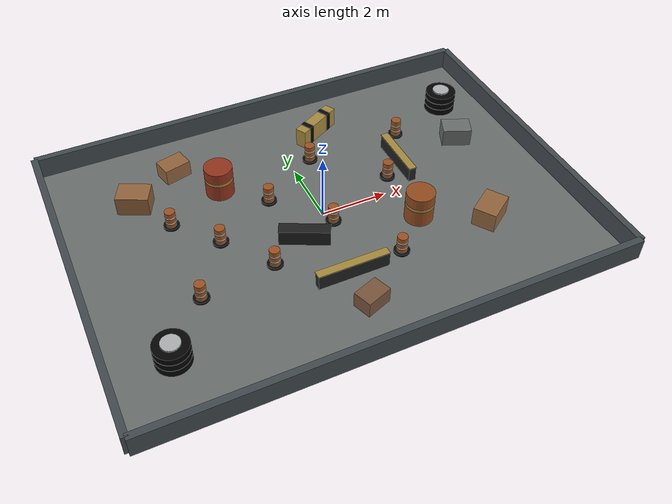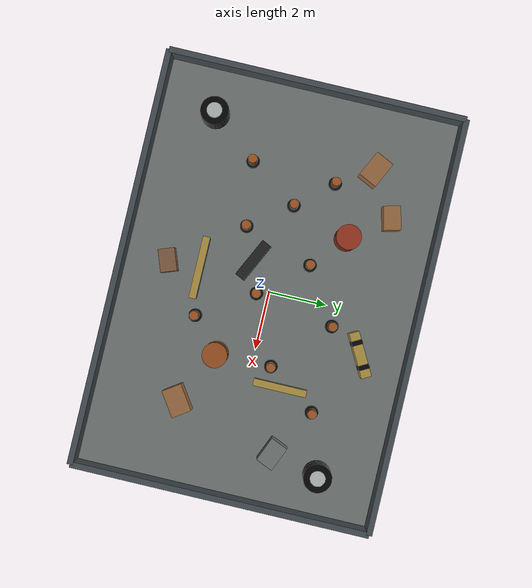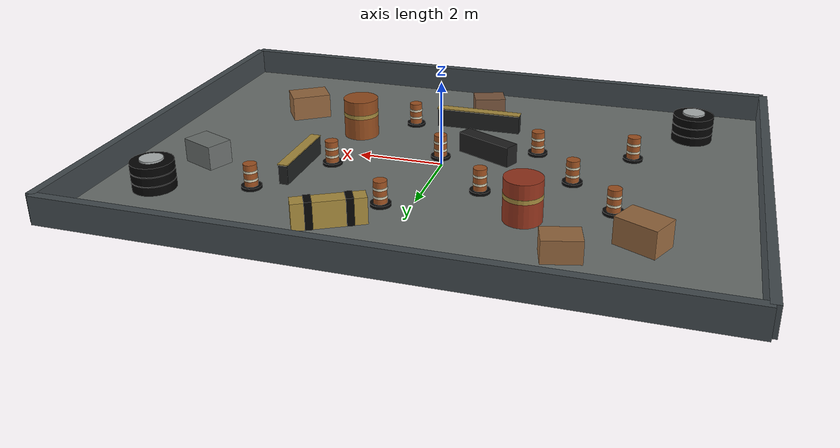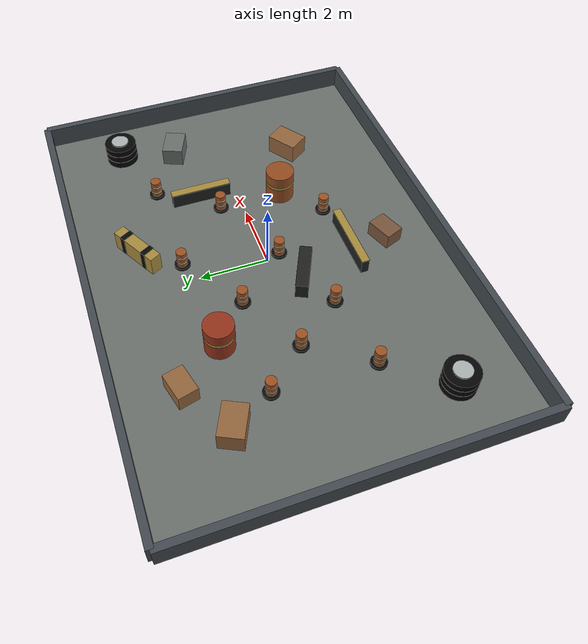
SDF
<sdf version="1.9">
 <world name="me5413_obstacle_world">
  <plugin filename="gz-sim-physics-system" name="gz::sim::systems::Physics"/>
  <plugin filename="gz-sim-scene-broadcaster-system" name="gz::sim::systems::SceneBroadcaster"/>
  <plugin filename="gz-sim-user-commands-system" name="gz::sim::systems::UserCommands"/>
  <plugin filename="gz-sim-sensors-system" name="gz::sim::systems::Sensors">
   <render_engine>ogre2</render_engine>
  </plugin>
  <gravity>0 0 -9.8</gravity>
  <magnetic_field>6e-06 2.3e-05 -4.2e-05</magnetic_field>
  <atmosphere type="adiabatic"/>
  <physics name="default_physics" type="ignored">
   <max_step_size>0.001</max_step_size>
   <real_time_factor>1.0</real_time_factor>
   <real_time_update_rate>1000</real_time_update_rate>
  </physics>
  <scene>
   <ambient>0.52 0.52 0.50 1</ambient>
   <background>0.78 0.84 0.9 1</background>
   <shadows>true</shadows>
  </scene>
  <light name="sun" type="directional">
   <pose>0 0 10 0 0 0</pose>
   <diffuse>1.0 0.94 0.82 1</diffuse>
   <specular>0.25 0.25 0.22 1</specular>
   <attenuation>
    <range>1000</range>
    <constant>0.9</constant>
    <linear>0.01</linear>
    <quadratic>0.001</quadratic>
   </attenuation>
   <direction>-0.45 0.25 -0.86</direction>
  </light>
  <model name="arena_floor">
   <static>true</static>
   <pose>0 0 -0.03 0 0 0</pose>
   <link name="link">
    <collision name="collision"><geometry><box><size>14 10 0.06</size></box></geometry></collision>
    <visual name="visual">
     <geometry><box><size>14 10 0.06</size></box></geometry>
     <material>
      <ambient>0.34 0.36 0.35 1</ambient>
      <diffuse>0.42 0.44 0.43 1</diffuse>
      <specular>0.05 0.05 0.05 1</specular>
     </material>
    </visual>
   </link>
  </model>
  <model name="arena_wall_north">
   <static>true</static>
   <pose>0 5.1 0.325 0 0 0</pose>
   <link name="link">
    <collision name="collision"><geometry><box><size>14.2 0.2 0.65</size></box></geometry></collision>
    <visual name="visual">
     <geometry><box><size>14.2 0.2 0.65</size></box></geometry>
     <material><ambient>0.18 0.2 0.22 1</ambient><diffuse>0.26 0.29 0.31 1</diffuse></material>
    </visual>
   </link>
  </model>
  <model name="arena_wall_south">
   <static>true</static>
   <pose>0 -5.1 0.325 0 0 0</pose>
   <link name="link">
    <collision name="collision"><geometry><box><size>14.2 0.2 0.65</size></box></geometry></collision>
    <visual name="visual">
     <geometry><box><size>14.2 0.2 0.65</size></box></geometry>
     <material><ambient>0.18 0.2 0.22 1</ambient><diffuse>0.26 0.29 0.31 1</diffuse></material>
    </visual>
   </link>
  </model>
  <model name="arena_wall_east">
   <static>true</static>
   <pose>7.1 0 0.325 0 0 0</pose>
   <link name="link">
    <collision name="collision"><geometry><box><size>0.2 10.2 0.65</size></box></geometry></collision>
    <visual name="visual">
     <geometry><box><size>0.2 10.2 0.65</size></box></geometry>
     <material><ambient>0.18 0.2 0.22 1</ambient><diffuse>0.26 0.29 0.31 1</diffuse></material>
    </visual>
   </link>
  </model>
  <model name="arena_wall_west">
   <static>true</static>
   <pose>-7.1 0 0.325 0 0 0</pose>
   <link name="link">
    <collision name="collision"><geometry><box><size>0.2 10.2 0.65</size></box></geometry></collision>
    <visual name="visual">
     <geometry><box><size>0.2 10.2 0.65</size></box></geometry>
     <material><ambient>0.18 0.2 0.22 1</ambient><diffuse>0.26 0.29 0.31 1</diffuse></material>
    </visual>
   </link>
  </model>
  <model name="low_barrier_mid">
   <static>true</static>
   <pose>-0.25 -2.45 0.225 0 0 0.0</pose>
   <link name="link">
    <collision name="collision"><geometry><box><size>2.1 0.22 0.45</size></box></geometry></collision>
    <visual name="visual">
     <geometry><box><size>2.1 0.22 0.45</size></box></geometry>
     <material><ambient>0.07 0.08 0.08 1</ambient><diffuse>0.12 0.13 0.13 1</diffuse></material>
    </visual>
    <visual name="warning_yellow_top">
     <pose>0 0 0.236 0 0 0</pose>
     <geometry><box><size>2.12 0.24 0.025</size></box></geometry>
     <material>
      <ambient>0.50 0.42 0.18 1</ambient>
      <diffuse>0.66 0.55 0.24 1</diffuse>
      <emissive>0.0 0.0 0.0 1</emissive>
     </material>
    </visual>
   </link>
  </model>
  <model name="low_barrier_exit">
   <static>true</static>
   <pose>3.05 1.1 0.225 0 0 1.5708</pose>
   <link name="link">
    <collision name="collision"><geometry><box><size>1.8 0.22 0.45</size></box></geometry></collision>
    <visual name="visual">
     <geometry><box><size>1.8 0.22 0.45</size></box></geometry>
     <material><ambient>0.07 0.08 0.08 1</ambient><diffuse>0.12 0.13 0.13 1</diffuse></material>
    </visual>
    <visual name="warning_yellow_top">
     <pose>0 0 0.236 0 0 0</pose>
     <geometry><box><size>1.82 0.24 0.025</size></box></geometry>
     <material>
      <ambient>0.50 0.42 0.18 1</ambient>
      <diffuse>0.66 0.55 0.24 1</diffuse>
      <emissive>0.0 0.0 0.0 1</emissive>
     </material>
    </visual>
   </link>
  </model>
  <model name="cone_start_left">
   <static>true</static>
   <pose>-4.2 -1.55 0 0 0 0</pose>
   <link name="link">
    <collision name="collision">
     <pose>0 0 0.29 0 0 0</pose>
     <geometry><cylinder><radius>0.16</radius><length>0.58</length></cylinder></geometry>
    </collision>
    <visual name="orange_body">
     <pose>0 0 0.29 0 0 0</pose>
     <geometry><cylinder><radius>0.15</radius><length>0.58</length></cylinder></geometry>
     <material>
      <ambient>0.48 0.24 0.10 1</ambient>
      <diffuse>0.62 0.32 0.13 1</diffuse>
      <specular>0.14 0.10 0.07 1</specular>
      <emissive>0.0 0.0 0.0 1</emissive>
     </material>
    </visual>
    <visual name="white_band_lower">
     <pose>0 0 0.22 0 0 0</pose>
     <geometry><cylinder><radius>0.156</radius><length>0.055</length></cylinder></geometry>
     <material><ambient>0.68 0.66 0.58 1</ambient><diffuse>0.82 0.80 0.70 1</diffuse></material>
    </visual>
    <visual name="white_band_upper">
     <pose>0 0 0.41 0 0 0</pose>
     <geometry><cylinder><radius>0.156</radius><length>0.055</length></cylinder></geometry>
     <material><ambient>0.68 0.66 0.58 1</ambient><diffuse>0.82 0.80 0.70 1</diffuse></material>
    </visual>
    <visual name="black_base">
     <pose>0 0 0.035 0 0 0</pose>
     <geometry><cylinder><radius>0.23</radius><length>0.07</length></cylinder></geometry>
     <material><ambient>0.02 0.02 0.02 1</ambient><diffuse>0.03 0.03 0.03 1</diffuse></material>
    </visual>
   </link>
  </model>
  <model name="cone_start_right">
   <static>true</static>
   <pose>-4.1 1.35 0 0 0 0</pose>
   <link name="link">
    <collision name="collision">
     <pose>0 0 0.29 0 0 0</pose>
     <geometry><cylinder><radius>0.16</radius><length>0.58</length></cylinder></geometry>
    </collision>
    <visual name="orange_body">
     <pose>0 0 0.29 0 0 0</pose>
     <geometry><cylinder><radius>0.15</radius><length>0.58</length></cylinder></geometry>
     <material>
      <ambient>0.48 0.24 0.10 1</ambient>
      <diffuse>0.62 0.32 0.13 1</diffuse>
      <specular>0.14 0.10 0.07 1</specular>
      <emissive>0.0 0.0 0.0 1</emissive>
     </material>
    </visual>
    <visual name="white_band_lower">
     <pose>0 0 0.22 0 0 0</pose>
     <geometry><cylinder><radius>0.156</radius><length>0.055</length></cylinder></geometry>
     <material><ambient>0.68 0.66 0.58 1</ambient><diffuse>0.82 0.80 0.70 1</diffuse></material>
    </visual>
    <visual name="white_band_upper">
     <pose>0 0 0.41 0 0 0</pose>
     <geometry><cylinder><radius>0.156</radius><length>0.055</length></cylinder></geometry>
     <material><ambient>0.68 0.66 0.58 1</ambient><diffuse>0.82 0.80 0.70 1</diffuse></material>
    </visual>
    <visual name="black_base">
     <pose>0 0 0.035 0 0 0</pose>
     <geometry><cylinder><radius>0.23</radius><length>0.07</length></cylinder></geometry>
     <material><ambient>0.02 0.02 0.02 1</ambient><diffuse>0.03 0.03 0.03 1</diffuse></material>
    </visual>
   </link>
  </model>
  <model name="cone_slalom_2">
   <static>true</static>
   <pose>-3.05 0.15 0 0 0 0</pose>
   <link name="link">
    <collision name="collision">
     <pose>0 0 0.29 0 0 0</pose>
     <geometry><cylinder><radius>0.16</radius><length>0.58</length></cylinder></geometry>
    </collision>
    <visual name="orange_body">
     <pose>0 0 0.29 0 0 0</pose>
     <geometry><cylinder><radius>0.15</radius><length>0.58</length></cylinder></geometry>
     <material>
      <ambient>0.48 0.24 0.10 1</ambient>
      <diffuse>0.62 0.32 0.13 1</diffuse>
      <specular>0.14 0.10 0.07 1</specular>
      <emissive>0.0 0.0 0.0 1</emissive>
     </material>
    </visual>
    <visual name="white_band_lower">
     <pose>0 0 0.22 0 0 0</pose>
     <geometry><cylinder><radius>0.156</radius><length>0.055</length></cylinder></geometry>
     <material><ambient>0.68 0.66 0.58 1</ambient><diffuse>0.82 0.80 0.70 1</diffuse></material>
    </visual>
    <visual name="white_band_upper">
     <pose>0 0 0.41 0 0 0</pose>
     <geometry><cylinder><radius>0.156</radius><length>0.055</length></cylinder></geometry>
     <material><ambient>0.68 0.66 0.58 1</ambient><diffuse>0.82 0.80 0.70 1</diffuse></material>
    </visual>
    <visual name="black_base">
     <pose>0 0 0.035 0 0 0</pose>
     <geometry><cylinder><radius>0.23</radius><length>0.07</length></cylinder></geometry>
     <material><ambient>0.02 0.02 0.02 1</ambient><diffuse>0.03 0.03 0.03 1</diffuse></material>
    </visual>
   </link>
  </model>
  <model name="cone_slalom_3">
   <static>true</static>
   <pose>-2.0 -1.25 0 0 0 0</pose>
   <link name="link">
    <collision name="collision">
     <pose>0 0 0.29 0 0 0</pose>
     <geometry><cylinder><radius>0.16</radius><length>0.58</length></cylinder></geometry>
    </collision>
    <visual name="orange_body">
     <pose>0 0 0.29 0 0 0</pose>
     <geometry><cylinder><radius>0.15</radius><length>0.58</length></cylinder></geometry>
     <material>
      <ambient>0.48 0.24 0.10 1</ambient>
      <diffuse>0.62 0.32 0.13 1</diffuse>
      <specular>0.14 0.10 0.07 1</specular>
      <emissive>0.0 0.0 0.0 1</emissive>
     </material>
    </visual>
    <visual name="white_band_lower">
     <pose>0 0 0.22 0 0 0</pose>
     <geometry><cylinder><radius>0.156</radius><length>0.055</length></cylinder></geometry>
     <material><ambient>0.68 0.66 0.58 1</ambient><diffuse>0.82 0.80 0.70 1</diffuse></material>
    </visual>
    <visual name="white_band_upper">
     <pose>0 0 0.41 0 0 0</pose>
     <geometry><cylinder><radius>0.156</radius><length>0.055</length></cylinder></geometry>
     <material><ambient>0.68 0.66 0.58 1</ambient><diffuse>0.82 0.80 0.70 1</diffuse></material>
    </visual>
    <visual name="black_base">
     <pose>0 0 0.035 0 0 0</pose>
     <geometry><cylinder><radius>0.23</radius><length>0.07</length></cylinder></geometry>
     <material><ambient>0.02 0.02 0.02 1</ambient><diffuse>0.03 0.03 0.03 1</diffuse></material>
    </visual>
   </link>
  </model>
  <model name="cone_slalom_4">
   <static>true</static>
   <pose>-1.2 1.15 0 0 0 0</pose>
   <link name="link">
    <collision name="collision">
     <pose>0 0 0.29 0 0 0</pose>
     <geometry><cylinder><radius>0.16</radius><length>0.58</length></cylinder></geometry>
    </collision>
    <visual name="orange_body">
     <pose>0 0 0.29 0 0 0</pose>
     <geometry><cylinder><radius>0.15</radius><length>0.58</length></cylinder></geometry>
     <material>
      <ambient>0.48 0.24 0.10 1</ambient>
      <diffuse>0.62 0.32 0.13 1</diffuse>
      <specular>0.14 0.10 0.07 1</specular>
      <emissive>0.0 0.0 0.0 1</emissive>
     </material>
    </visual>
    <visual name="white_band_lower">
     <pose>0 0 0.22 0 0 0</pose>
     <geometry><cylinder><radius>0.156</radius><length>0.055</length></cylinder></geometry>
     <material><ambient>0.68 0.66 0.58 1</ambient><diffuse>0.82 0.80 0.70 1</diffuse></material>
    </visual>
    <visual name="white_band_upper">
     <pose>0 0 0.41 0 0 0</pose>
     <geometry><cylinder><radius>0.156</radius><length>0.055</length></cylinder></geometry>
     <material><ambient>0.68 0.66 0.58 1</ambient><diffuse>0.82 0.80 0.70 1</diffuse></material>
    </visual>
    <visual name="black_base">
     <pose>0 0 0.035 0 0 0</pose>
     <geometry><cylinder><radius>0.23</radius><length>0.07</length></cylinder></geometry>
     <material><ambient>0.02 0.02 0.02 1</ambient><diffuse>0.03 0.03 0.03 1</diffuse></material>
    </visual>
   </link>
  </model>
  <model name="cone_slalom_5">
   <static>true</static>
   <pose>0.15 -0.4 0 0 0 0</pose>
   <link name="link">
    <collision name="collision">
     <pose>0 0 0.29 0 0 0</pose>
     <geometry><cylinder><radius>0.16</radius><length>0.58</length></cylinder></geometry>
    </collision>
    <visual name="orange_body">
     <pose>0 0 0.29 0 0 0</pose>
     <geometry><cylinder><radius>0.15</radius><length>0.58</length></cylinder></geometry>
     <material>
      <ambient>0.48 0.24 0.10 1</ambient>
      <diffuse>0.62 0.32 0.13 1</diffuse>
      <specular>0.14 0.10 0.07 1</specular>
      <emissive>0.0 0.0 0.0 1</emissive>
     </material>
    </visual>
    <visual name="white_band_lower">
     <pose>0 0 0.22 0 0 0</pose>
     <geometry><cylinder><radius>0.156</radius><length>0.055</length></cylinder></geometry>
     <material><ambient>0.68 0.66 0.58 1</ambient><diffuse>0.82 0.80 0.70 1</diffuse></material>
    </visual>
    <visual name="white_band_upper">
     <pose>0 0 0.41 0 0 0</pose>
     <geometry><cylinder><radius>0.156</radius><length>0.055</length></cylinder></geometry>
     <material><ambient>0.68 0.66 0.58 1</ambient><diffuse>0.82 0.80 0.70 1</diffuse></material>
    </visual>
    <visual name="black_base">
     <pose>0 0 0.035 0 0 0</pose>
     <geometry><cylinder><radius>0.23</radius><length>0.07</length></cylinder></geometry>
     <material><ambient>0.02 0.02 0.02 1</ambient><diffuse>0.03 0.03 0.03 1</diffuse></material>
    </visual>
   </link>
  </model>
  <model name="cone_left_mid">
   <static>true</static>
   <pose>0.65 2.35 0 0 0 0</pose>
   <link name="link">
    <collision name="collision">
     <pose>0 0 0.29 0 0 0</pose>
     <geometry><cylinder><radius>0.16</radius><length>0.58</length></cylinder></geometry>
    </collision>
    <visual name="orange_body">
     <pose>0 0 0.29 0 0 0</pose>
     <geometry><cylinder><radius>0.15</radius><length>0.58</length></cylinder></geometry>
     <material>
      <ambient>0.48 0.24 0.10 1</ambient>
      <diffuse>0.62 0.32 0.13 1</diffuse>
      <specular>0.14 0.10 0.07 1</specular>
      <emissive>0.0 0.0 0.0 1</emissive>
     </material>
    </visual>
    <visual name="white_band_lower">
     <pose>0 0 0.22 0 0 0</pose>
     <geometry><cylinder><radius>0.156</radius><length>0.055</length></cylinder></geometry>
     <material><ambient>0.68 0.66 0.58 1</ambient><diffuse>0.82 0.80 0.70 1</diffuse></material>
    </visual>
    <visual name="white_band_upper">
     <pose>0 0 0.41 0 0 0</pose>
     <geometry><cylinder><radius>0.156</radius><length>0.055</length></cylinder></geometry>
     <material><ambient>0.68 0.66 0.58 1</ambient><diffuse>0.82 0.80 0.70 1</diffuse></material>
    </visual>
    <visual name="black_base">
     <pose>0 0 0.035 0 0 0</pose>
     <geometry><cylinder><radius>0.23</radius><length>0.07</length></cylinder></geometry>
     <material><ambient>0.02 0.02 0.02 1</ambient><diffuse>0.03 0.03 0.03 1</diffuse></material>
    </visual>
   </link>
  </model>
  <model name="cone_right_mid">
   <static>true</static>
   <pose>1.35 -2.25 0 0 0 0</pose>
   <link name="link">
    <collision name="collision">
     <pose>0 0 0.29 0 0 0</pose>
     <geometry><cylinder><radius>0.16</radius><length>0.58</length></cylinder></geometry>
    </collision>
    <visual name="orange_body">
     <pose>0 0 0.29 0 0 0</pose>
     <geometry><cylinder><radius>0.15</radius><length>0.58</length></cylinder></geometry>
     <material>
      <ambient>0.48 0.24 0.10 1</ambient>
      <diffuse>0.62 0.32 0.13 1</diffuse>
      <specular>0.14 0.10 0.07 1</specular>
      <emissive>0.0 0.0 0.0 1</emissive>
     </material>
    </visual>
    <visual name="white_band_lower">
     <pose>0 0 0.22 0 0 0</pose>
     <geometry><cylinder><radius>0.156</radius><length>0.055</length></cylinder></geometry>
     <material><ambient>0.68 0.66 0.58 1</ambient><diffuse>0.82 0.80 0.70 1</diffuse></material>
    </visual>
    <visual name="white_band_upper">
     <pose>0 0 0.41 0 0 0</pose>
     <geometry><cylinder><radius>0.156</radius><length>0.055</length></cylinder></geometry>
     <material><ambient>0.68 0.66 0.58 1</ambient><diffuse>0.82 0.80 0.70 1</diffuse></material>
    </visual>
    <visual name="black_base">
     <pose>0 0 0.035 0 0 0</pose>
     <geometry><cylinder><radius>0.23</radius><length>0.07</length></cylinder></geometry>
     <material><ambient>0.02 0.02 0.02 1</ambient><diffuse>0.03 0.03 0.03 1</diffuse></material>
    </visual>
   </link>
  </model>
  <model name="cone_back_left">
   <static>true</static>
   <pose>3.65 2.35 0 0 0 0</pose>
   <link name="link">
    <collision name="collision">
     <pose>0 0 0.29 0 0 0</pose>
     <geometry><cylinder><radius>0.16</radius><length>0.58</length></cylinder></geometry>
    </collision>
    <visual name="orange_body">
     <pose>0 0 0.29 0 0 0</pose>
     <geometry><cylinder><radius>0.15</radius><length>0.58</length></cylinder></geometry>
     <material>
      <ambient>0.48 0.24 0.10 1</ambient>
      <diffuse>0.62 0.32 0.13 1</diffuse>
      <specular>0.14 0.10 0.07 1</specular>
      <emissive>0.0 0.0 0.0 1</emissive>
     </material>
    </visual>
    <visual name="white_band_lower">
     <pose>0 0 0.22 0 0 0</pose>
     <geometry><cylinder><radius>0.156</radius><length>0.055</length></cylinder></geometry>
     <material><ambient>0.68 0.66 0.58 1</ambient><diffuse>0.82 0.80 0.70 1</diffuse></material>
    </visual>
    <visual name="white_band_upper">
     <pose>0 0 0.41 0 0 0</pose>
     <geometry><cylinder><radius>0.156</radius><length>0.055</length></cylinder></geometry>
     <material><ambient>0.68 0.66 0.58 1</ambient><diffuse>0.82 0.80 0.70 1</diffuse></material>
    </visual>
    <visual name="black_base">
     <pose>0 0 0.035 0 0 0</pose>
     <geometry><cylinder><radius>0.23</radius><length>0.07</length></cylinder></geometry>
     <material><ambient>0.02 0.02 0.02 1</ambient><diffuse>0.03 0.03 0.03 1</diffuse></material>
    </visual>
   </link>
  </model>
  <model name="cone_extra_1">
   <static>true</static>
   <pose>2.45 0.65 0 0 0 0</pose>
   <link name="link">
    <collision name="collision">
     <pose>0 0 0.29 0 0 0</pose>
     <geometry><cylinder><radius>0.16</radius><length>0.58</length></cylinder></geometry>
    </collision>
    <visual name="orange_body">
     <pose>0 0 0.29 0 0 0</pose>
     <geometry><cylinder><radius>0.15</radius><length>0.58</length></cylinder></geometry>
     <material>
      <ambient>0.48 0.24 0.10 1</ambient>
      <diffuse>0.62 0.32 0.13 1</diffuse>
      <specular>0.14 0.10 0.07 1</specular>
      <emissive>0.0 0.0 0.0 1</emissive>
     </material>
    </visual>
    <visual name="white_band_lower">
     <pose>0 0 0.22 0 0 0</pose>
     <geometry><cylinder><radius>0.156</radius><length>0.055</length></cylinder></geometry>
     <material><ambient>0.68 0.66 0.58 1</ambient><diffuse>0.82 0.80 0.70 1</diffuse></material>
    </visual>
    <visual name="white_band_upper">
     <pose>0 0 0.41 0 0 0</pose>
     <geometry><cylinder><radius>0.156</radius><length>0.055</length></cylinder></geometry>
     <material><ambient>0.68 0.66 0.58 1</ambient><diffuse>0.82 0.80 0.70 1</diffuse></material>
    </visual>
    <visual name="black_base">
     <pose>0 0 0.035 0 0 0</pose>
     <geometry><cylinder><radius>0.23</radius><length>0.07</length></cylinder></geometry>
     <material><ambient>0.02 0.02 0.02 1</ambient><diffuse>0.03 0.03 0.03 1</diffuse></material>
    </visual>
   </link>
  </model>
  <model name="box_north">
   <static>true</static>
   <pose>-3.35 3.45 0.25 0 0 0.25</pose>
   <link name="link">
    <collision name="collision"><geometry><box><size>0.82 0.58 0.50</size></box></geometry></collision>
    <visual name="visual">
     <geometry><box><size>0.82 0.58 0.50</size></box></geometry>
     <material>
      <ambient>0.46 0.30 0.18 1</ambient>
      <diffuse>0.58 0.40 0.24 1</diffuse>
      <specular>0.10 0.07 0.04 1</specular>
      <emissive>0.0 0.0 0.0 1</emissive>
     </material>
    </visual>
   </link>
  </model>
  <model name="box_center">
   <static>true</static>
   <pose>5.25 1.35 0.28 0 0 -0.4</pose>
   <link name="link">
    <collision name="collision"><geometry><box><size>0.88 0.62 0.56</size></box></geometry></collision>
    <visual name="visual">
     <geometry><box><size>0.88 0.62 0.56</size></box></geometry>
     <material>
      <ambient>0.28 0.30 0.30 1</ambient>
      <diffuse>0.42 0.44 0.43 1</diffuse>
      <specular>0.10 0.10 0.09 1</specular>
      <emissive>0.0 0.0 0.0 1</emissive>
     </material>
    </visual>
   </link>
  </model>
  <model name="box_south">
   <static>true</static>
   <pose>-0.25 -3.55 0.24 0 0 0.35</pose>
   <link name="link">
    <collision name="collision"><geometry><box><size>0.78 0.56 0.48</size></box></geometry></collision>
    <visual name="visual">
     <geometry><box><size>0.78 0.56 0.48</size></box></geometry>
     <material>
      <ambient>0.34 0.24 0.18 1</ambient>
      <diffuse>0.48 0.34 0.24 1</diffuse>
      <specular>0.10 0.07 0.05 1</specular>
      <emissive>0.0 0.0 0.0 1</emissive>
     </material>
    </visual>
   </link>
  </model>
  <model name="box_west_north">
   <static>true</static>
   <pose>-4.8 2.55 0.30 0 0 -0.45</pose>
   <link name="link">
    <collision name="collision"><geometry><box><size>0.95 0.68 0.60</size></box></geometry></collision>
    <visual name="visual">
     <geometry><box><size>0.95 0.68 0.60</size></box></geometry>
     <material>
      <ambient>0.46 0.30 0.18 1</ambient>
      <diffuse>0.58 0.40 0.24 1</diffuse>
      <specular>0.10 0.07 0.04 1</specular>
      <emissive>0.0 0.0 0.0 1</emissive>
     </material>
    </visual>
   </link>
  </model>
  <model name="box_east_south">
   <static>true</static>
   <pose>4.25 -2.15 0.30 0 0 0.6</pose>
   <link name="link">
    <collision name="collision"><geometry><box><size>0.95 0.68 0.60</size></box></geometry></collision>
    <visual name="visual">
     <geometry><box><size>0.95 0.68 0.60</size></box></geometry>
     <material>
      <ambient>0.46 0.30 0.18 1</ambient>
      <diffuse>0.58 0.40 0.24 1</diffuse>
      <specular>0.10 0.07 0.04 1</specular>
      <emissive>0.0 0.0 0.0 1</emissive>
     </material>
    </visual>
   </link>
  </model>
  <model name="barrel_north_mid">
   <static>true</static>
   <pose>-2.35 2.15 0 0 0 0</pose>
   <link name="link">
    <collision name="collision">
     <pose>0 0 0.48 0 0 0</pose>
     <geometry><cylinder><radius>0.42</radius><length>0.96</length></cylinder></geometry>
    </collision>
    <visual name="body">
     <pose>0 0 0.48 0 0 0</pose>
     <geometry><cylinder><radius>0.42</radius><length>0.96</length></cylinder></geometry>
     <material>
      <ambient>0.44 0.14 0.08 1</ambient>
      <diffuse>0.58 0.20 0.11 1</diffuse>
      <specular>0.14 0.08 0.05 1</specular>
      <emissive>0.0 0.0 0.0 1</emissive>
     </material>
    </visual>
    <visual name="yellow_band">
     <pose>0 0 0.58 0 0 0</pose>
     <geometry><cylinder><radius>0.423</radius><length>0.10</length></cylinder></geometry>
     <material><ambient>0.48 0.40 0.18 1</ambient><diffuse>0.64 0.54 0.24 1</diffuse></material>
    </visual>
   </link>
  </model>
  <model name="barrel_south_mid">
   <static>true</static>
   <pose>2.45 -1.25 0 0 0 0</pose>
   <link name="link">
    <collision name="collision">
     <pose>0 0 0.48 0 0 0</pose>
     <geometry><cylinder><radius>0.42</radius><length>0.96</length></cylinder></geometry>
    </collision>
    <visual name="body">
     <pose>0 0 0.48 0 0 0</pose>
     <geometry><cylinder><radius>0.42</radius><length>0.96</length></cylinder></geometry>
     <material>
      <ambient>0.42 0.20 0.08 1</ambient>
      <diffuse>0.58 0.30 0.12 1</diffuse>
      <specular>0.14 0.09 0.05 1</specular>
      <emissive>0.0 0.0 0.0 1</emissive>
     </material>
    </visual>
    <visual name="yellow_band">
     <pose>0 0 0.58 0 0 0</pose>
     <geometry><cylinder><radius>0.423</radius><length>0.10</length></cylinder></geometry>
     <material><ambient>0.48 0.40 0.18 1</ambient><diffuse>0.64 0.54 0.24 1</diffuse></material>
    </visual>
   </link>
  </model>
  <model name="low_block_center_gap">
   <static>true</static>
   <pose>-0.9 -0.75 0.24 0 0 -0.45</pose>
   <link name="link">
    <collision name="collision"><geometry><box><size>1.45 0.36 0.48</size></box></geometry></collision>
    <visual name="visual">
     <geometry><box><size>1.45 0.36 0.48</size></box></geometry>
     <material>
      <ambient>0.08 0.08 0.08 1</ambient>
      <diffuse>0.12 0.12 0.12 1</diffuse>
      <specular>0.18 0.18 0.18 1</specular>
      <emissive>0.02 0.02 0.02 1</emissive>
     </material>
    </visual>
   </link>
  </model>
  <model name="tire_stack_west">
   <static>true</static>
   <pose>-5.45 -3.15 0 0 0 0.25</pose>
   <link name="link">
    <collision name="collision">
     <pose>0 0 0.36 0 0 0</pose>
     <geometry><cylinder><radius>0.48</radius><length>0.72</length></cylinder></geometry>
    </collision>
    <visual name="tire_bottom">
     <pose>0 0 0.14 0 0 0</pose>
     <geometry><cylinder><radius>0.48</radius><length>0.20</length></cylinder></geometry>
     <material>
      <ambient>0.005 0.005 0.005 1</ambient>
      <diffuse>0.015 0.015 0.015 1</diffuse>
      <specular>0.05 0.05 0.05 1</specular>
     </material>
    </visual>
    <visual name="tire_middle">
     <pose>0 0 0.36 0 0 0</pose>
     <geometry><cylinder><radius>0.48</radius><length>0.20</length></cylinder></geometry>
     <material>
      <ambient>0.005 0.005 0.005 1</ambient>
      <diffuse>0.015 0.015 0.015 1</diffuse>
      <specular>0.05 0.05 0.05 1</specular>
     </material>
    </visual>
    <visual name="tire_top">
     <pose>0 0 0.58 0 0 0</pose>
     <geometry><cylinder><radius>0.48</radius><length>0.20</length></cylinder></geometry>
     <material>
      <ambient>0.005 0.005 0.005 1</ambient>
      <diffuse>0.015 0.015 0.015 1</diffuse>
      <specular>0.05 0.05 0.05 1</specular>
     </material>
    </visual>
    <visual name="silver_cap">
     <pose>0 0 0.72 0 0 0</pose>
     <geometry><cylinder><radius>0.26</radius><length>0.04</length></cylinder></geometry>
     <material>
      <ambient>0.45 0.46 0.46 1</ambient>
      <diffuse>0.68 0.70 0.70 1</diffuse>
      <specular>0.30 0.30 0.30 1</specular>
     </material>
    </visual>
   </link>
  </model>
  <model name="tire_stack_east">
   <static>true</static>
   <pose>5.65 3.0 0 0 0 -0.45</pose>
   <link name="link">
    <collision name="collision">
     <pose>0 0 0.36 0 0 0</pose>
     <geometry><cylinder><radius>0.48</radius><length>0.72</length></cylinder></geometry>
    </collision>
    <visual name="tire_bottom">
     <pose>0 0 0.14 0 0 0</pose>
     <geometry><cylinder><radius>0.48</radius><length>0.20</length></cylinder></geometry>
     <material>
      <ambient>0.005 0.005 0.005 1</ambient>
      <diffuse>0.015 0.015 0.015 1</diffuse>
      <specular>0.05 0.05 0.05 1</specular>
     </material>
    </visual>
    <visual name="tire_middle">
     <pose>0 0 0.36 0 0 0</pose>
     <geometry><cylinder><radius>0.48</radius><length>0.20</length></cylinder></geometry>
     <material>
      <ambient>0.005 0.005 0.005 1</ambient>
      <diffuse>0.015 0.015 0.015 1</diffuse>
      <specular>0.05 0.05 0.05 1</specular>
     </material>
    </visual>
    <visual name="tire_top">
     <pose>0 0 0.58 0 0 0</pose>
     <geometry><cylinder><radius>0.48</radius><length>0.20</length></cylinder></geometry>
     <material>
      <ambient>0.005 0.005 0.005 1</ambient>
      <diffuse>0.015 0.015 0.015 1</diffuse>
      <specular>0.05 0.05 0.05 1</specular>
     </material>
    </visual>
    <visual name="silver_cap">
     <pose>0 0 0.72 0 0 0</pose>
     <geometry><cylinder><radius>0.26</radius><length>0.04</length></cylinder></geometry>
     <material>
      <ambient>0.45 0.46 0.46 1</ambient>
      <diffuse>0.68 0.70 0.70 1</diffuse>
      <specular>0.30 0.30 0.30 1</specular>
     </material>
    </visual>
   </link>
  </model>
  <model name="hazard_barrier_north">
   <static>true</static>
   <pose>1.35 3.45 0.30 0 0 0.5</pose>
   <link name="link">
    <collision name="collision"><geometry><box><size>1.55 0.35 0.60</size></box></geometry></collision>
    <visual name="body">
     <geometry><box><size>1.55 0.35 0.60</size></box></geometry>
     <material>
      <ambient>0.50 0.42 0.18 1</ambient>
      <diffuse>0.66 0.55 0.24 1</diffuse>
      <specular>0.12 0.10 0.05 1</specular>
      <emissive>0.0 0.0 0.0 1</emissive>
     </material>
    </visual>
    <visual name="black_band_left">
     <pose>-0.42 0 0.01 0 0 0</pose>
     <geometry><box><size>0.16 0.37 0.62</size></box></geometry>
     <material><ambient>0.01 0.01 0.01 1</ambient><diffuse>0.02 0.02 0.02 1</diffuse></material>
    </visual>
    <visual name="black_band_right">
     <pose>0.42 0 0.01 0 0 0</pose>
     <geometry><box><size>0.16 0.37 0.62</size></box></geometry>
     <material><ambient>0.01 0.01 0.01 1</ambient><diffuse>0.02 0.02 0.02 1</diffuse></material>
    </visual>
   </link>
  </model>
 </world>
</sdf>
